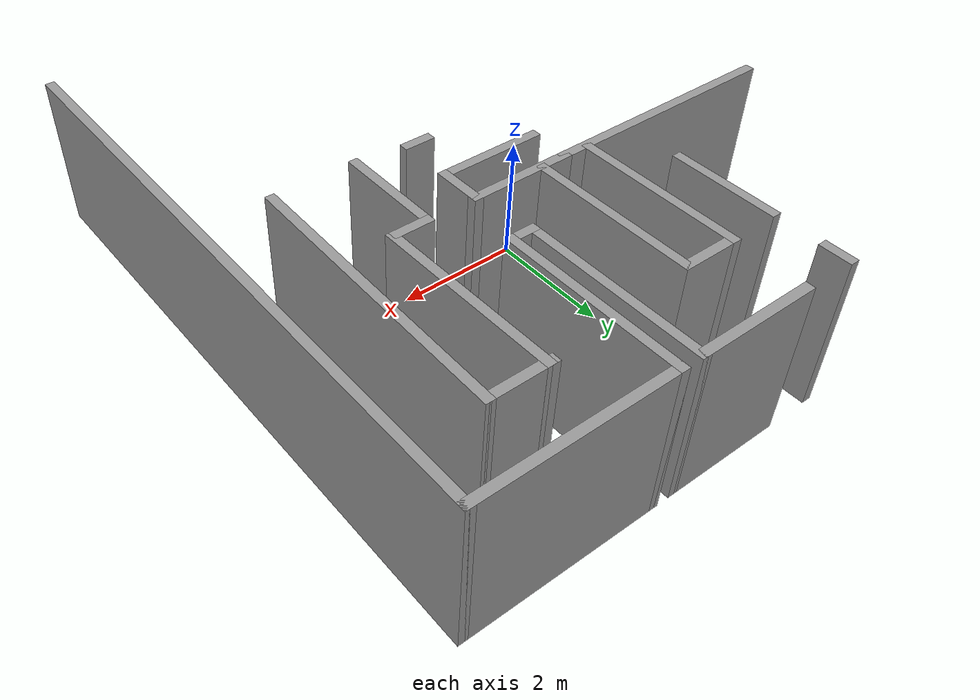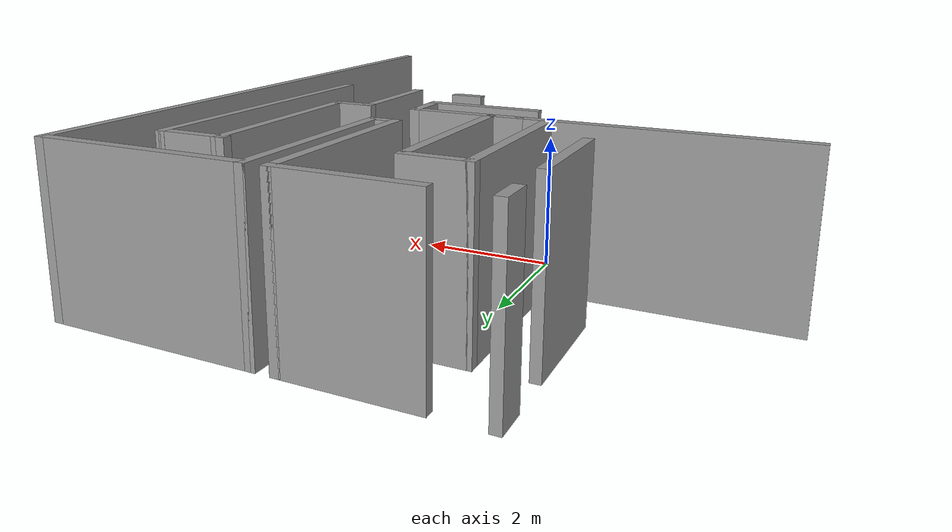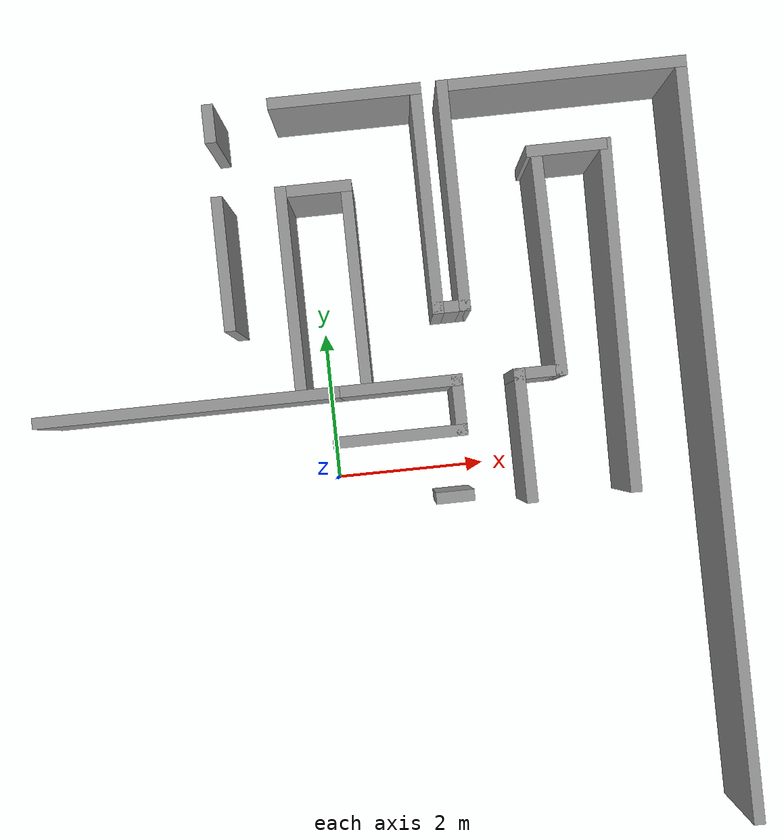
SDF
<sdf version="1.6">
 <model name="maze_final1">
  <link name="Wall_104">
   <pose>-1.15 4.75 0 0 -0 1.5708</pose>
   <visual name="Wall_104_Visual">
    <pose>0 0 1.25 0 -0 0</pose>
    <geometry><box><size>0.5 0.15 2.5</size></box></geometry>
    <material>
     <script><uri>file://media/materials/scripts/gazebo.material</uri><name>Gazebo/Grey</name></script>
     <ambient>1 1 1 1</ambient>
    </material>
    <meta><layer>0</layer></meta>
   </visual>
   <collision name="Wall_104_Collision">
    <pose>0 0 1.25 0 -0 0</pose>
    <geometry><box><size>0.5 0.15 2.5</size></box></geometry>
    <surface>
     <friction>
      <ode><mu>1</mu><mu2>1</mu2><fdir1>0 0 0</fdir1><slip1>0</slip1><slip2>0</slip2></ode>
      <torsional>
       <coefficient>1</coefficient>
       <patch_radius>0</patch_radius>
       <surface_radius>0</surface_radius>
       <use_patch_radius>1</use_patch_radius>
       <ode><slip>0</slip></ode>
      </torsional>
     </friction>
     <bounce><restitution_coefficient>0</restitution_coefficient><threshold>1e+06</threshold></bounce>
     <contact>
      <collide_without_contact>0</collide_without_contact>
      <collide_without_contact_bitmask>1</collide_without_contact_bitmask>
      <collide_bitmask>1</collide_bitmask>
      <ode>
       <soft_cfm>0</soft_cfm>
       <soft_erp>0.2</soft_erp>
       <kp>1e+13</kp>
       <kd>1</kd>
       <max_vel>0.01</max_vel>
       <min_depth>0</min_depth>
      </ode>
      <bullet>
       <split_impulse>1</split_impulse>
       <split_impulse_penetration_threshold>-0.01</split_impulse_penetration_threshold>
       <soft_cfm>0</soft_cfm>
       <soft_erp>0.2</soft_erp>
       <kp>1e+13</kp>
       <kd>1</kd>
      </bullet>
     </contact>
    </surface>
   </collision>
  </link>
  <link name="Wall_109">
   <pose>-1.825 1.125 0 0 -0 0</pose>
   <visual name="Wall_109_Visual">
    <pose>0 0 1.25 0 -0 0</pose>
    <geometry><box><size>4 0.15 2.5</size></box></geometry>
    <material>
     <script><uri>file://media/materials/scripts/gazebo.material</uri><name>Gazebo/Grey</name></script>
     <ambient>1 1 1 1</ambient>
    </material>
    <meta><layer>0</layer></meta>
   </visual>
   <collision name="Wall_109_Collision">
    <pose>0 0 1.25 0 -0 0</pose>
    <geometry><box><size>4 0.15 2.5</size></box></geometry>
    <surface>
     <friction>
      <ode><mu>1</mu><mu2>1</mu2><fdir1>0 0 0</fdir1><slip1>0</slip1><slip2>0</slip2></ode>
      <torsional>
       <coefficient>1</coefficient>
       <patch_radius>0</patch_radius>
       <surface_radius>0</surface_radius>
       <use_patch_radius>1</use_patch_radius>
       <ode><slip>0</slip></ode>
      </torsional>
     </friction>
     <bounce><restitution_coefficient>0</restitution_coefficient><threshold>1e+06</threshold></bounce>
     <contact>
      <collide_without_contact>0</collide_without_contact>
      <collide_without_contact_bitmask>1</collide_without_contact_bitmask>
      <collide_bitmask>1</collide_bitmask>
      <ode>
       <soft_cfm>0</soft_cfm>
       <soft_erp>0.2</soft_erp>
       <kp>1e+13</kp>
       <kd>1</kd>
       <max_vel>0.01</max_vel>
       <min_depth>0</min_depth>
      </ode>
      <bullet>
       <split_impulse>1</split_impulse>
       <split_impulse_penetration_threshold>-0.01</split_impulse_penetration_threshold>
       <soft_cfm>0</soft_cfm>
       <soft_erp>0.2</soft_erp>
       <kp>1e+13</kp>
       <kd>1</kd>
      </bullet>
     </contact>
    </surface>
   </collision>
  </link>
  <link name="Wall_115">
   <pose>1.525 -0.375 0 0 -0 3.14159</pose>
   <visual name="Wall_115_Visual">
    <pose>0 0 1.25 0 -0 0</pose>
    <geometry><box><size>0.5 0.15 2.5</size></box></geometry>
    <material>
     <script><uri>file://media/materials/scripts/gazebo.material</uri><name>Gazebo/Grey</name></script>
     <ambient>1 1 1 1</ambient>
    </material>
    <meta><layer>0</layer></meta>
   </visual>
   <collision name="Wall_115_Collision">
    <pose>0 0 1.25 0 -0 0</pose>
    <geometry><box><size>0.5 0.15 2.5</size></box></geometry>
    <surface>
     <friction>
      <ode><mu>1</mu><mu2>1</mu2><fdir1>0 0 0</fdir1><slip1>0</slip1><slip2>0</slip2></ode>
      <torsional>
       <coefficient>1</coefficient>
       <patch_radius>0</patch_radius>
       <surface_radius>0</surface_radius>
       <use_patch_radius>1</use_patch_radius>
       <ode><slip>0</slip></ode>
      </torsional>
     </friction>
     <bounce><restitution_coefficient>0</restitution_coefficient><threshold>1e+06</threshold></bounce>
     <contact>
      <collide_without_contact>0</collide_without_contact>
      <collide_without_contact_bitmask>1</collide_without_contact_bitmask>
      <collide_bitmask>1</collide_bitmask>
      <ode>
       <soft_cfm>0</soft_cfm>
       <soft_erp>0.2</soft_erp>
       <kp>1e+13</kp>
       <kd>1</kd>
       <max_vel>0.01</max_vel>
       <min_depth>0</min_depth>
      </ode>
      <bullet>
       <split_impulse>1</split_impulse>
       <split_impulse_penetration_threshold>-0.01</split_impulse_penetration_threshold>
       <soft_cfm>0</soft_cfm>
       <soft_erp>0.2</soft_erp>
       <kp>1e+13</kp>
       <kd>1</kd>
      </bullet>
     </contact>
    </surface>
   </collision>
  </link>
  <link name="Wall_120">
   <pose>0.9 0.475 0 0 -0 3.14159</pose>
   <visual name="Wall_120_Visual">
    <pose>0 0 1.25 0 -0 0</pose>
    <geometry><box><size>1.75 0.15 2.5</size></box></geometry>
    <material>
     <script><uri>file://media/materials/scripts/gazebo.material</uri><name>Gazebo/Grey</name></script>
     <ambient>1 1 1 1</ambient>
    </material>
    <meta><layer>0</layer></meta>
   </visual>
   <collision name="Wall_120_Collision">
    <pose>0 0 1.25 0 -0 0</pose>
    <geometry><box><size>1.75 0.15 2.5</size></box></geometry>
    <surface>
     <friction>
      <ode><mu>1</mu><mu2>1</mu2><fdir1>0 0 0</fdir1><slip1>0</slip1><slip2>0</slip2></ode>
      <torsional>
       <coefficient>1</coefficient>
       <patch_radius>0</patch_radius>
       <surface_radius>0</surface_radius>
       <use_patch_radius>1</use_patch_radius>
       <ode><slip>0</slip></ode>
      </torsional>
     </friction>
     <bounce><restitution_coefficient>0</restitution_coefficient><threshold>1e+06</threshold></bounce>
     <contact>
      <collide_without_contact>0</collide_without_contact>
      <collide_without_contact_bitmask>1</collide_without_contact_bitmask>
      <collide_bitmask>1</collide_bitmask>
      <ode>
       <soft_cfm>0</soft_cfm>
       <soft_erp>0.2</soft_erp>
       <kp>1e+13</kp>
       <kd>1</kd>
       <max_vel>0.01</max_vel>
       <min_depth>0</min_depth>
      </ode>
      <bullet>
       <split_impulse>1</split_impulse>
       <split_impulse_penetration_threshold>-0.01</split_impulse_penetration_threshold>
       <soft_cfm>0</soft_cfm>
       <soft_erp>0.2</soft_erp>
       <kp>1e+13</kp>
       <kd>1</kd>
      </bullet>
     </contact>
    </surface>
   </collision>
  </link>
  <link name="Wall_122">
   <pose>-1.15 2.925 0 0 0 -1.5708</pose>
   <visual name="Wall_122_Visual">
    <pose>0 0 1.25 0 -0 0</pose>
    <geometry><box><size>1.75 0.15 2.5</size></box></geometry>
    <material>
     <script><uri>file://media/materials/scripts/gazebo.material</uri><name>Gazebo/Grey</name></script>
     <ambient>1 1 1 1</ambient>
    </material>
    <meta><layer>0</layer></meta>
   </visual>
   <collision name="Wall_122_Collision">
    <pose>0 0 1.25 0 -0 0</pose>
    <geometry><box><size>1.75 0.15 2.5</size></box></geometry>
    <surface>
     <friction>
      <ode><mu>1</mu><mu2>1</mu2><fdir1>0 0 0</fdir1><slip1>0</slip1><slip2>0</slip2></ode>
      <torsional>
       <coefficient>1</coefficient>
       <patch_radius>0</patch_radius>
       <surface_radius>0</surface_radius>
       <use_patch_radius>1</use_patch_radius>
       <ode><slip>0</slip></ode>
      </torsional>
     </friction>
     <bounce><restitution_coefficient>0</restitution_coefficient><threshold>1e+06</threshold></bounce>
     <contact>
      <collide_without_contact>0</collide_without_contact>
      <collide_without_contact_bitmask>1</collide_without_contact_bitmask>
      <collide_bitmask>1</collide_bitmask>
      <ode>
       <soft_cfm>0</soft_cfm>
       <soft_erp>0.2</soft_erp>
       <kp>1e+13</kp>
       <kd>1</kd>
       <max_vel>0.01</max_vel>
       <min_depth>0</min_depth>
      </ode>
      <bullet>
       <split_impulse>1</split_impulse>
       <split_impulse_penetration_threshold>-0.01</split_impulse_penetration_threshold>
       <soft_cfm>0</soft_cfm>
       <soft_erp>0.2</soft_erp>
       <kp>1e+13</kp>
       <kd>1</kd>
      </bullet>
     </contact>
    </surface>
   </collision>
  </link>
  <link name="Wall_128">
   <pose>0.625 4.925 0 0 -0 0</pose>
   <visual name="Wall_128_Visual">
    <pose>0 0 1.25 0 -0 0</pose>
    <geometry><box><size>2 0.15 2.5</size></box></geometry>
    <material>
     <script><uri>file://media/materials/scripts/gazebo.material</uri><name>Gazebo/Grey</name></script>
     <ambient>1 1 1 1</ambient>
    </material>
    <meta><layer>0</layer></meta>
   </visual>
   <collision name="Wall_128_Collision">
    <pose>0 0 1.25 0 -0 0</pose>
    <geometry><box><size>2 0.15 2.5</size></box></geometry>
    <surface>
     <friction>
      <ode><mu>1</mu><mu2>1</mu2><fdir1>0 0 0</fdir1><slip1>0</slip1><slip2>0</slip2></ode>
      <torsional>
       <coefficient>1</coefficient>
       <patch_radius>0</patch_radius>
       <surface_radius>0</surface_radius>
       <use_patch_radius>1</use_patch_radius>
       <ode><slip>0</slip></ode>
      </torsional>
     </friction>
     <bounce><restitution_coefficient>0</restitution_coefficient><threshold>1e+06</threshold></bounce>
     <contact>
      <collide_without_contact>0</collide_without_contact>
      <collide_without_contact_bitmask>1</collide_without_contact_bitmask>
      <collide_bitmask>1</collide_bitmask>
      <ode>
       <soft_cfm>0</soft_cfm>
       <soft_erp>0.2</soft_erp>
       <kp>1e+13</kp>
       <kd>1</kd>
       <max_vel>0.01</max_vel>
       <min_depth>0</min_depth>
      </ode>
      <bullet>
       <split_impulse>1</split_impulse>
       <split_impulse_penetration_threshold>-0.01</split_impulse_penetration_threshold>
       <soft_cfm>0</soft_cfm>
       <soft_erp>0.2</soft_erp>
       <kp>1e+13</kp>
       <kd>1</kd>
      </bullet>
     </contact>
    </surface>
   </collision>
  </link>
  <link name="Wall_129">
   <pose>1.55 3.5 0 0 0 -1.5708</pose>
   <visual name="Wall_129_Visual">
    <pose>0 0 1.25 0 -0 0</pose>
    <geometry><box><size>3 0.15 2.5</size></box></geometry>
    <material>
     <script><uri>file://media/materials/scripts/gazebo.material</uri><name>Gazebo/Grey</name></script>
     <ambient>1 1 1 1</ambient>
    </material>
    <meta><layer>0</layer></meta>
   </visual>
   <collision name="Wall_129_Collision">
    <pose>0 0 1.25 0 -0 0</pose>
    <geometry><box><size>3 0.15 2.5</size></box></geometry>
    <surface>
     <friction>
      <ode><mu>1</mu><mu2>1</mu2><fdir1>0 0 0</fdir1><slip1>0</slip1><slip2>0</slip2></ode>
      <torsional>
       <coefficient>1</coefficient>
       <patch_radius>0</patch_radius>
       <surface_radius>0</surface_radius>
       <use_patch_radius>1</use_patch_radius>
       <ode><slip>0</slip></ode>
      </torsional>
     </friction>
     <bounce><restitution_coefficient>0</restitution_coefficient><threshold>1e+06</threshold></bounce>
     <contact>
      <collide_without_contact>0</collide_without_contact>
      <collide_without_contact_bitmask>1</collide_without_contact_bitmask>
      <collide_bitmask>1</collide_bitmask>
      <ode>
       <soft_cfm>0</soft_cfm>
       <soft_erp>0.2</soft_erp>
       <kp>1e+13</kp>
       <kd>1</kd>
       <max_vel>0.01</max_vel>
       <min_depth>0</min_depth>
      </ode>
      <bullet>
       <split_impulse>1</split_impulse>
       <split_impulse_penetration_threshold>-0.01</split_impulse_penetration_threshold>
       <soft_cfm>0</soft_cfm>
       <soft_erp>0.2</soft_erp>
       <kp>1e+13</kp>
       <kd>1</kd>
      </bullet>
     </contact>
    </surface>
   </collision>
  </link>
  <link name="Wall_130">
   <pose>1.725 2.075 0 0 -0 0</pose>
   <visual name="Wall_130_Visual">
    <pose>0 0 1.25 0 -0 0</pose>
    <geometry><box><size>0.5 0.15 2.5</size></box></geometry>
    <material>
     <script><uri>file://media/materials/scripts/gazebo.material</uri><name>Gazebo/Grey</name></script>
     <ambient>1 1 1 1</ambient>
    </material>
    <meta><layer>0</layer></meta>
   </visual>
   <collision name="Wall_130_Collision">
    <pose>0 0 1.25 0 -0 0</pose>
    <geometry><box><size>0.5 0.15 2.5</size></box></geometry>
    <surface>
     <friction>
      <ode><mu>1</mu><mu2>1</mu2><fdir1>0 0 0</fdir1><slip1>0</slip1><slip2>0</slip2></ode>
      <torsional>
       <coefficient>1</coefficient>
       <patch_radius>0</patch_radius>
       <surface_radius>0</surface_radius>
       <use_patch_radius>1</use_patch_radius>
       <ode><slip>0</slip></ode>
      </torsional>
     </friction>
     <bounce><restitution_coefficient>0</restitution_coefficient><threshold>1e+06</threshold></bounce>
     <contact>
      <collide_without_contact>0</collide_without_contact>
      <collide_without_contact_bitmask>1</collide_without_contact_bitmask>
      <collide_bitmask>1</collide_bitmask>
      <ode>
       <soft_cfm>0</soft_cfm>
       <soft_erp>0.2</soft_erp>
       <kp>1e+13</kp>
       <kd>1</kd>
       <max_vel>0.01</max_vel>
       <min_depth>0</min_depth>
      </ode>
      <bullet>
       <split_impulse>1</split_impulse>
       <split_impulse_penetration_threshold>-0.01</split_impulse_penetration_threshold>
       <soft_cfm>0</soft_cfm>
       <soft_erp>0.2</soft_erp>
       <kp>1e+13</kp>
       <kd>1</kd>
      </bullet>
     </contact>
    </surface>
   </collision>
  </link>
  <link name="Wall_131">
   <pose>1.9 3.5 0 0 -0 1.5708</pose>
   <visual name="Wall_131_Visual">
    <pose>0 0 1.25 0 -0 0</pose>
    <geometry><box><size>3 0.15 2.5</size></box></geometry>
    <material>
     <script><uri>file://media/materials/scripts/gazebo.material</uri><name>Gazebo/Grey</name></script>
     <ambient>1 1 1 1</ambient>
    </material>
    <meta><layer>0</layer></meta>
   </visual>
   <collision name="Wall_131_Collision">
    <pose>0 0 1.25 0 -0 0</pose>
    <geometry><box><size>3 0.15 2.5</size></box></geometry>
    <surface>
     <friction>
      <ode><mu>1</mu><mu2>1</mu2><fdir1>0 0 0</fdir1><slip1>0</slip1><slip2>0</slip2></ode>
      <torsional>
       <coefficient>1</coefficient>
       <patch_radius>0</patch_radius>
       <surface_radius>0</surface_radius>
       <use_patch_radius>1</use_patch_radius>
       <ode><slip>0</slip></ode>
      </torsional>
     </friction>
     <bounce><restitution_coefficient>0</restitution_coefficient><threshold>1e+06</threshold></bounce>
     <contact>
      <collide_without_contact>0</collide_without_contact>
      <collide_without_contact_bitmask>1</collide_without_contact_bitmask>
      <collide_bitmask>1</collide_bitmask>
      <ode>
       <soft_cfm>0</soft_cfm>
       <soft_erp>0.2</soft_erp>
       <kp>1e+13</kp>
       <kd>1</kd>
       <max_vel>0.01</max_vel>
       <min_depth>0</min_depth>
      </ode>
      <bullet>
       <split_impulse>1</split_impulse>
       <split_impulse_penetration_threshold>-0.01</split_impulse_penetration_threshold>
       <soft_cfm>0</soft_cfm>
       <soft_erp>0.2</soft_erp>
       <kp>1e+13</kp>
       <kd>1</kd>
      </bullet>
     </contact>
    </surface>
   </collision>
  </link>
  <link name="Wall_132">
   <pose>3.45 4.925 0 0 -0 0</pose>
   <visual name="Wall_132_Visual">
    <pose>0 0 1.25 0 -0 0</pose>
    <geometry><box><size>3.25 0.15 2.5</size></box></geometry>
    <material>
     <script><uri>file://media/materials/scripts/gazebo.material</uri><name>Gazebo/Grey</name></script>
     <ambient>1 1 1 1</ambient>
    </material>
    <meta><layer>0</layer></meta>
   </visual>
   <collision name="Wall_132_Collision">
    <pose>0 0 1.25 0 -0 0</pose>
    <geometry><box><size>3.25 0.15 2.5</size></box></geometry>
    <surface>
     <friction>
      <ode><mu>1</mu><mu2>1</mu2><fdir1>0 0 0</fdir1><slip1>0</slip1><slip2>0</slip2></ode>
      <torsional>
       <coefficient>1</coefficient>
       <patch_radius>0</patch_radius>
       <surface_radius>0</surface_radius>
       <use_patch_radius>1</use_patch_radius>
       <ode><slip>0</slip></ode>
      </torsional>
     </friction>
     <bounce><restitution_coefficient>0</restitution_coefficient><threshold>1e+06</threshold></bounce>
     <contact>
      <collide_without_contact>0</collide_without_contact>
      <collide_without_contact_bitmask>1</collide_without_contact_bitmask>
      <collide_bitmask>1</collide_bitmask>
      <ode>
       <soft_cfm>0</soft_cfm>
       <soft_erp>0.2</soft_erp>
       <kp>1e+13</kp>
       <kd>1</kd>
       <max_vel>0.01</max_vel>
       <min_depth>0</min_depth>
      </ode>
      <bullet>
       <split_impulse>1</split_impulse>
       <split_impulse_penetration_threshold>-0.01</split_impulse_penetration_threshold>
       <soft_cfm>0</soft_cfm>
       <soft_erp>0.2</soft_erp>
       <kp>1e+13</kp>
       <kd>1</kd>
      </bullet>
     </contact>
    </surface>
   </collision>
  </link>
  <link name="Wall_133">
   <pose>5 0 0 0 0 -1.5708</pose>
   <visual name="Wall_133_Visual">
    <pose>0 0 1.25 0 -0 0</pose>
    <geometry><box><size>10 0.15 2.5</size></box></geometry>
    <material>
     <script><uri>file://media/materials/scripts/gazebo.material</uri><name>Gazebo/Grey</name></script>
     <ambient>1 1 1 1</ambient>
    </material>
    <meta><layer>0</layer></meta>
   </visual>
   <collision name="Wall_133_Collision">
    <pose>0 0 1.25 0 -0 0</pose>
    <geometry><box><size>10 0.15 2.5</size></box></geometry>
    <surface>
     <friction>
      <ode><mu>1</mu><mu2>1</mu2><fdir1>0 0 0</fdir1><slip1>0</slip1><slip2>0</slip2></ode>
      <torsional>
       <coefficient>1</coefficient>
       <patch_radius>0</patch_radius>
       <surface_radius>0</surface_radius>
       <use_patch_radius>1</use_patch_radius>
       <ode><slip>0</slip></ode>
      </torsional>
     </friction>
     <bounce><restitution_coefficient>0</restitution_coefficient><threshold>1e+06</threshold></bounce>
     <contact>
      <collide_without_contact>0</collide_without_contact>
      <collide_without_contact_bitmask>1</collide_without_contact_bitmask>
      <collide_bitmask>1</collide_bitmask>
      <ode>
       <soft_cfm>0</soft_cfm>
       <soft_erp>0.2</soft_erp>
       <kp>1e+13</kp>
       <kd>1</kd>
       <max_vel>0.01</max_vel>
       <min_depth>0</min_depth>
      </ode>
      <bullet>
       <split_impulse>1</split_impulse>
       <split_impulse_penetration_threshold>-0.01</split_impulse_penetration_threshold>
       <soft_cfm>0</soft_cfm>
       <soft_erp>0.2</soft_erp>
       <kp>1e+13</kp>
       <kd>1</kd>
      </bullet>
     </contact>
    </surface>
   </collision>
  </link>
  <link name="Wall_141">
   <pose>1.7 0.8 0 0 -0 1.5708</pose>
   <visual name="Wall_141_Visual">
    <pose>0 0 1.25 0 -0 0</pose>
    <geometry><box><size>0.8 0.15 2.5</size></box></geometry>
    <material>
     <script><uri>file://media/materials/scripts/gazebo.material</uri><name>Gazebo/Grey</name></script>
     <ambient>1 1 1 1</ambient>
    </material>
    <meta><layer>0</layer></meta>
   </visual>
   <collision name="Wall_141_Collision">
    <pose>0 0 1.25 0 -0 0</pose>
    <geometry><box><size>0.8 0.15 2.5</size></box></geometry>
    <surface>
     <friction>
      <ode><mu>1</mu><mu2>1</mu2><fdir1>0 0 0</fdir1><slip1>0</slip1><slip2>0</slip2></ode>
      <torsional>
       <coefficient>1</coefficient>
       <patch_radius>0</patch_radius>
       <surface_radius>0</surface_radius>
       <use_patch_radius>1</use_patch_radius>
       <ode><slip>0</slip></ode>
      </torsional>
     </friction>
     <bounce><restitution_coefficient>0</restitution_coefficient><threshold>1e+06</threshold></bounce>
     <contact>
      <collide_without_contact>0</collide_without_contact>
      <collide_without_contact_bitmask>1</collide_without_contact_bitmask>
      <collide_bitmask>1</collide_bitmask>
      <ode>
       <soft_cfm>0</soft_cfm>
       <soft_erp>0.2</soft_erp>
       <kp>1e+13</kp>
       <kd>1</kd>
       <max_vel>0.01</max_vel>
       <min_depth>0</min_depth>
      </ode>
      <bullet>
       <split_impulse>1</split_impulse>
       <split_impulse_penetration_threshold>-0.01</split_impulse_penetration_threshold>
       <soft_cfm>0</soft_cfm>
       <soft_erp>0.2</soft_erp>
       <kp>1e+13</kp>
       <kd>1</kd>
      </bullet>
     </contact>
    </surface>
   </collision>
  </link>
  <link name="Wall_142">
   <pose>0.9 1.125 0 0 -0 3.14159</pose>
   <visual name="Wall_142_Visual">
    <pose>0 0 1.25 0 -0 0</pose>
    <geometry><box><size>1.75 0.15 2.5</size></box></geometry>
    <material>
     <script><uri>file://media/materials/scripts/gazebo.material</uri><name>Gazebo/Grey</name></script>
     <ambient>1 1 1 1</ambient>
    </material>
    <meta><layer>0</layer></meta>
   </visual>
   <collision name="Wall_142_Collision">
    <pose>0 0 1.25 0 -0 0</pose>
    <geometry><box><size>1.75 0.15 2.5</size></box></geometry>
    <surface>
     <friction>
      <ode><mu>1</mu><mu2>1</mu2><fdir1>0 0 0</fdir1><slip1>0</slip1><slip2>0</slip2></ode>
      <torsional>
       <coefficient>1</coefficient>
       <patch_radius>0</patch_radius>
       <surface_radius>0</surface_radius>
       <use_patch_radius>1</use_patch_radius>
       <ode><slip>0</slip></ode>
      </torsional>
     </friction>
     <bounce><restitution_coefficient>0</restitution_coefficient><threshold>1e+06</threshold></bounce>
     <contact>
      <collide_without_contact>0</collide_without_contact>
      <collide_without_contact_bitmask>1</collide_without_contact_bitmask>
      <collide_bitmask>1</collide_bitmask>
      <ode>
       <soft_cfm>0</soft_cfm>
       <soft_erp>0.2</soft_erp>
       <kp>1e+13</kp>
       <kd>1</kd>
       <max_vel>0.01</max_vel>
       <min_depth>0</min_depth>
      </ode>
      <bullet>
       <split_impulse>1</split_impulse>
       <split_impulse_penetration_threshold>-0.01</split_impulse_penetration_threshold>
       <soft_cfm>0</soft_cfm>
       <soft_erp>0.2</soft_erp>
       <kp>1e+13</kp>
       <kd>1</kd>
      </bullet>
     </contact>
    </surface>
   </collision>
  </link>
  <link name="Wall_144">
   <pose>-0.319089 2.47065 0 0 0 -1.5708</pose>
   <visual name="Wall_144_Visual">
    <pose>0 0 1.25 0 -0 0</pose>
    <geometry><box><size>2.75 0.15 2.5</size></box></geometry>
    <material>
     <script><uri>file://media/materials/scripts/gazebo.material</uri><name>Gazebo/Grey</name></script>
     <ambient>1 1 1 1</ambient>
    </material>
    <meta><layer>0</layer></meta>
   </visual>
   <collision name="Wall_144_Collision">
    <pose>0 0 1.25 0 -0 0</pose>
    <geometry><box><size>2.75 0.15 2.5</size></box></geometry>
    <surface>
     <friction>
      <ode><mu>1</mu><mu2>1</mu2><fdir1>0 0 0</fdir1><slip1>0</slip1><slip2>0</slip2></ode>
      <torsional>
       <coefficient>1</coefficient>
       <patch_radius>0</patch_radius>
       <surface_radius>0</surface_radius>
       <use_patch_radius>1</use_patch_radius>
       <ode><slip>0</slip></ode>
      </torsional>
     </friction>
     <bounce><restitution_coefficient>0</restitution_coefficient><threshold>1e+06</threshold></bounce>
     <contact>
      <collide_without_contact>0</collide_without_contact>
      <collide_without_contact_bitmask>1</collide_without_contact_bitmask>
      <collide_bitmask>1</collide_bitmask>
      <ode>
       <soft_cfm>0</soft_cfm>
       <soft_erp>0.2</soft_erp>
       <kp>1e+13</kp>
       <kd>1</kd>
       <max_vel>0.01</max_vel>
       <min_depth>0</min_depth>
      </ode>
      <bullet>
       <split_impulse>1</split_impulse>
       <split_impulse_penetration_threshold>-0.01</split_impulse_penetration_threshold>
       <soft_cfm>0</soft_cfm>
       <soft_erp>0.2</soft_erp>
       <kp>1e+13</kp>
       <kd>1</kd>
      </bullet>
     </contact>
    </surface>
   </collision>
  </link>
  <link name="Wall_146">
   <pose>0.105911 3.77065 0 0 -0 0</pose>
   <visual name="Wall_146_Visual">
    <pose>0 0 1.25 0 -0 0</pose>
    <geometry><box><size>1 0.15 2.5</size></box></geometry>
    <material>
     <script><uri>file://media/materials/scripts/gazebo.material</uri><name>Gazebo/Grey</name></script>
     <ambient>1 1 1 1</ambient>
    </material>
    <meta><layer>0</layer></meta>
   </visual>
   <collision name="Wall_146_Collision">
    <pose>0 0 1.25 0 -0 0</pose>
    <geometry><box><size>1 0.15 2.5</size></box></geometry>
    <surface>
     <friction>
      <ode><mu>1</mu><mu2>1</mu2><fdir1>0 0 0</fdir1><slip1>0</slip1><slip2>0</slip2></ode>
      <torsional>
       <coefficient>1</coefficient>
       <patch_radius>0</patch_radius>
       <surface_radius>0</surface_radius>
       <use_patch_radius>1</use_patch_radius>
       <ode><slip>0</slip></ode>
      </torsional>
     </friction>
     <bounce><restitution_coefficient>0</restitution_coefficient><threshold>1e+06</threshold></bounce>
     <contact>
      <collide_without_contact>0</collide_without_contact>
      <collide_without_contact_bitmask>1</collide_without_contact_bitmask>
      <collide_bitmask>1</collide_bitmask>
      <ode>
       <soft_cfm>0</soft_cfm>
       <soft_erp>0.2</soft_erp>
       <kp>1e+13</kp>
       <kd>1</kd>
       <max_vel>0.01</max_vel>
       <min_depth>0</min_depth>
      </ode>
      <bullet>
       <split_impulse>1</split_impulse>
       <split_impulse_penetration_threshold>-0.01</split_impulse_penetration_threshold>
       <soft_cfm>0</soft_cfm>
       <soft_erp>0.2</soft_erp>
       <kp>1e+13</kp>
       <kd>1</kd>
      </bullet>
     </contact>
    </surface>
   </collision>
  </link>
  <link name="Wall_147">
   <pose>0.53091 2.47065 0 0 0 -1.5708</pose>
   <visual name="Wall_147_Visual">
    <pose>0 0 1.25 0 -0 0</pose>
    <geometry><box><size>2.75 0.15 2.5</size></box></geometry>
    <material>
     <script><uri>file://media/materials/scripts/gazebo.material</uri><name>Gazebo/Grey</name></script>
     <ambient>1 1 1 1</ambient>
    </material>
    <meta><layer>0</layer></meta>
   </visual>
   <collision name="Wall_147_Collision">
    <pose>0 0 1.25 0 -0 0</pose>
    <geometry><box><size>2.75 0.15 2.5</size></box></geometry>
    <surface>
     <friction>
      <ode><mu>1</mu><mu2>1</mu2><fdir1>0 0 0</fdir1><slip1>0</slip1><slip2>0</slip2></ode>
      <torsional>
       <coefficient>1</coefficient>
       <patch_radius>0</patch_radius>
       <surface_radius>0</surface_radius>
       <use_patch_radius>1</use_patch_radius>
       <ode><slip>0</slip></ode>
      </torsional>
     </friction>
     <bounce><restitution_coefficient>0</restitution_coefficient><threshold>1e+06</threshold></bounce>
     <contact>
      <collide_without_contact>0</collide_without_contact>
      <collide_without_contact_bitmask>1</collide_without_contact_bitmask>
      <collide_bitmask>1</collide_bitmask>
      <ode>
       <soft_cfm>0</soft_cfm>
       <soft_erp>0.2</soft_erp>
       <kp>1e+13</kp>
       <kd>1</kd>
       <max_vel>0.01</max_vel>
       <min_depth>0</min_depth>
      </ode>
      <bullet>
       <split_impulse>1</split_impulse>
       <split_impulse_penetration_threshold>-0.01</split_impulse_penetration_threshold>
       <soft_cfm>0</soft_cfm>
       <soft_erp>0.2</soft_erp>
       <kp>1e+13</kp>
       <kd>1</kd>
      </bullet>
     </contact>
    </surface>
   </collision>
  </link>
  <link name="Wall_151">
   <pose>3.41829 3.96725 0 0 -0 0</pose>
   <visual name="Wall_151_Visual">
    <pose>0 0 1.25 0 -0 0</pose>
    <geometry><box><size>1.05303 0.15 2.5</size></box></geometry>
    <material>
     <script><uri>file://media/materials/scripts/gazebo.material</uri><name>Gazebo/Grey</name></script>
     <ambient>1 1 1 1</ambient>
    </material>
    <meta><layer>0</layer></meta>
   </visual>
   <collision name="Wall_151_Collision">
    <pose>0 0 1.25 0 -0 0</pose>
    <geometry><box><size>1.05303 0.15 2.5</size></box></geometry>
    <surface>
     <friction>
      <ode><mu>1</mu><mu2>1</mu2><fdir1>0 0 0</fdir1><slip1>0</slip1><slip2>0</slip2></ode>
      <torsional>
       <coefficient>1</coefficient>
       <patch_radius>0</patch_radius>
       <surface_radius>0</surface_radius>
       <use_patch_radius>1</use_patch_radius>
       <ode><slip>0</slip></ode>
      </torsional>
     </friction>
     <bounce><restitution_coefficient>0</restitution_coefficient><threshold>1e+06</threshold></bounce>
     <contact>
      <collide_without_contact>0</collide_without_contact>
      <collide_without_contact_bitmask>1</collide_without_contact_bitmask>
      <collide_bitmask>1</collide_bitmask>
      <ode>
       <soft_cfm>0</soft_cfm>
       <soft_erp>0.2</soft_erp>
       <kp>1e+13</kp>
       <kd>1</kd>
       <max_vel>0.01</max_vel>
       <min_depth>0</min_depth>
      </ode>
      <bullet>
       <split_impulse>1</split_impulse>
       <split_impulse_penetration_threshold>-0.01</split_impulse_penetration_threshold>
       <soft_cfm>0</soft_cfm>
       <soft_erp>0.2</soft_erp>
       <kp>1e+13</kp>
       <kd>1</kd>
      </bullet>
     </contact>
    </surface>
   </collision>
  </link>
  <link name="Wall_152">
   <pose>3.89177 1.74225 0 0 0 -1.58476</pose>
   <visual name="Wall_152_Visual">
    <pose>0 0 1.25 0 -0 0</pose>
    <geometry><box><size>4.60022 0.15 2.5</size></box></geometry>
    <material>
     <script><uri>file://media/materials/scripts/gazebo.material</uri><name>Gazebo/Grey</name></script>
     <ambient>1 1 1 1</ambient>
    </material>
    <meta><layer>0</layer></meta>
   </visual>
   <collision name="Wall_152_Collision">
    <pose>0 0 1.25 0 -0 0</pose>
    <geometry><box><size>4.60022 0.15 2.5</size></box></geometry>
    <surface>
     <friction>
      <ode><mu>1</mu><mu2>1</mu2><fdir1>0 0 0</fdir1><slip1>0</slip1><slip2>0</slip2></ode>
      <torsional>
       <coefficient>1</coefficient>
       <patch_radius>0</patch_radius>
       <surface_radius>0</surface_radius>
       <use_patch_radius>1</use_patch_radius>
       <ode><slip>0</slip></ode>
      </torsional>
     </friction>
     <bounce><restitution_coefficient>0</restitution_coefficient><threshold>1e+06</threshold></bounce>
     <contact>
      <collide_without_contact>0</collide_without_contact>
      <collide_without_contact_bitmask>1</collide_without_contact_bitmask>
      <collide_bitmask>1</collide_bitmask>
      <ode>
       <soft_cfm>0</soft_cfm>
       <soft_erp>0.2</soft_erp>
       <kp>1e+13</kp>
       <kd>1</kd>
       <max_vel>0.01</max_vel>
       <min_depth>0</min_depth>
      </ode>
      <bullet>
       <split_impulse>1</split_impulse>
       <split_impulse_penetration_threshold>-0.01</split_impulse_penetration_threshold>
       <soft_cfm>0</soft_cfm>
       <soft_erp>0.2</soft_erp>
       <kp>1e+13</kp>
       <kd>1</kd>
      </bullet>
     </contact>
    </surface>
   </collision>
  </link>
  <link name="Wall_159">
   <pose>3.03874 2.54225 0 0 0 -1.55751</pose>
   <visual name="Wall_159_Visual">
    <pose>0 0 1.25 0 -0 0</pose>
    <geometry><box><size>3.00025 0.15 2.5</size></box></geometry>
    <material>
     <script><uri>file://media/materials/scripts/gazebo.material</uri><name>Gazebo/Grey</name></script>
     <ambient>1 1 1 1</ambient>
    </material>
    <meta><layer>0</layer></meta>
   </visual>
   <collision name="Wall_159_Collision">
    <pose>0 0 1.25 0 -0 0</pose>
    <geometry><box><size>3.00025 0.15 2.5</size></box></geometry>
    <surface>
     <friction>
      <ode><mu>1</mu><mu2>1</mu2><fdir1>0 0 0</fdir1><slip1>0</slip1><slip2>0</slip2></ode>
      <torsional>
       <coefficient>1</coefficient>
       <patch_radius>0</patch_radius>
       <surface_radius>0</surface_radius>
       <use_patch_radius>1</use_patch_radius>
       <ode><slip>0</slip></ode>
      </torsional>
     </friction>
     <bounce><restitution_coefficient>0</restitution_coefficient><threshold>1e+06</threshold></bounce>
     <contact>
      <collide_without_contact>0</collide_without_contact>
      <collide_without_contact_bitmask>1</collide_without_contact_bitmask>
      <collide_bitmask>1</collide_bitmask>
      <ode>
       <soft_cfm>0</soft_cfm>
       <soft_erp>0.2</soft_erp>
       <kp>1e+13</kp>
       <kd>1</kd>
       <max_vel>0.01</max_vel>
       <min_depth>0</min_depth>
      </ode>
      <bullet>
       <split_impulse>1</split_impulse>
       <split_impulse_penetration_threshold>-0.01</split_impulse_penetration_threshold>
       <soft_cfm>0</soft_cfm>
       <soft_erp>0.2</soft_erp>
       <kp>1e+13</kp>
       <kd>1</kd>
      </bullet>
     </contact>
    </surface>
   </collision>
  </link>
  <link name="Wall_161">
   <pose>2.51071 0.317247 0 0 0 -1.5708</pose>
   <visual name="Wall_161_Visual">
    <pose>0 0 1.25 0 -0 0</pose>
    <geometry><box><size>1.75 0.15 2.5</size></box></geometry>
    <material>
     <script><uri>file://media/materials/scripts/gazebo.material</uri><name>Gazebo/Grey</name></script>
     <ambient>1 1 1 1</ambient>
    </material>
    <meta><layer>0</layer></meta>
   </visual>
   <collision name="Wall_161_Collision">
    <pose>0 0 1.25 0 -0 0</pose>
    <geometry><box><size>1.75 0.15 2.5</size></box></geometry>
    <surface>
     <friction>
      <ode><mu>1</mu><mu2>1</mu2><fdir1>0 0 0</fdir1><slip1>0</slip1><slip2>0</slip2></ode>
      <torsional>
       <coefficient>1</coefficient>
       <patch_radius>0</patch_radius>
       <surface_radius>0</surface_radius>
       <use_patch_radius>1</use_patch_radius>
       <ode><slip>0</slip></ode>
      </torsional>
     </friction>
     <bounce><restitution_coefficient>0</restitution_coefficient><threshold>1e+06</threshold></bounce>
     <contact>
      <collide_without_contact>0</collide_without_contact>
      <collide_without_contact_bitmask>1</collide_without_contact_bitmask>
      <collide_bitmask>1</collide_bitmask>
      <ode>
       <soft_cfm>0</soft_cfm>
       <soft_erp>0.2</soft_erp>
       <kp>1e+13</kp>
       <kd>1</kd>
       <max_vel>0.01</max_vel>
       <min_depth>0</min_depth>
      </ode>
      <bullet>
       <split_impulse>1</split_impulse>
       <split_impulse_penetration_threshold>-0.01</split_impulse_penetration_threshold>
       <soft_cfm>0</soft_cfm>
       <soft_erp>0.2</soft_erp>
       <kp>1e+13</kp>
       <kd>1</kd>
      </bullet>
     </contact>
    </surface>
   </collision>
  </link>
  <link name="Wall_169">
   <pose>2.75767 1.11725 0 0 -0 0</pose>
   <visual name="Wall_169_Visual">
    <pose>0 0 1.25 0 -0 0</pose>
    <geometry><box><size>0.643936 0.15 2.5</size></box></geometry>
    <material>
     <script><uri>file://media/materials/scripts/gazebo.material</uri><name>Gazebo/Grey</name></script>
     <ambient>1 1 1 1</ambient>
    </material>
    <meta><layer>0</layer></meta>
   </visual>
   <collision name="Wall_169_Collision">
    <pose>0 0 1.25 0 -0 0</pose>
    <geometry><box><size>0.643936 0.15 2.5</size></box></geometry>
    <surface>
     <friction>
      <ode><mu>1</mu><mu2>1</mu2><fdir1>0 0 0</fdir1><slip1>0</slip1><slip2>0</slip2></ode>
      <torsional>
       <coefficient>1</coefficient>
       <patch_radius>0</patch_radius>
       <surface_radius>0</surface_radius>
       <use_patch_radius>1</use_patch_radius>
       <ode><slip>0</slip></ode>
      </torsional>
     </friction>
     <bounce><restitution_coefficient>0</restitution_coefficient><threshold>1e+06</threshold></bounce>
     <contact>
      <collide_without_contact>0</collide_without_contact>
      <collide_without_contact_bitmask>1</collide_without_contact_bitmask>
      <collide_bitmask>1</collide_bitmask>
      <ode>
       <soft_cfm>0</soft_cfm>
       <soft_erp>0.2</soft_erp>
       <kp>1e+13</kp>
       <kd>1</kd>
       <max_vel>0.01</max_vel>
       <min_depth>0</min_depth>
      </ode>
      <bullet>
       <split_impulse>1</split_impulse>
       <split_impulse_penetration_threshold>-0.01</split_impulse_penetration_threshold>
       <soft_cfm>0</soft_cfm>
       <soft_erp>0.2</soft_erp>
       <kp>1e+13</kp>
       <kd>1</kd>
      </bullet>
     </contact>
    </surface>
   </collision>
  </link>
  <static>1</static>
 </model>
</sdf>
